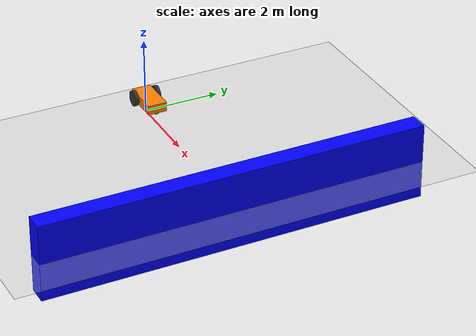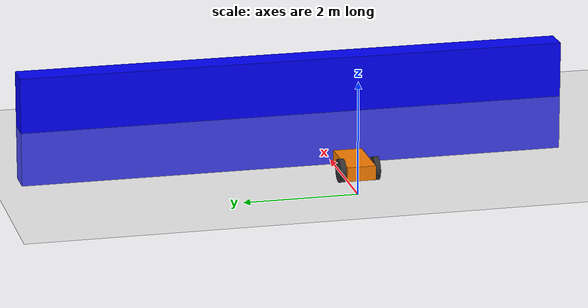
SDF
<?xml version="1.0" ?>
<sdf version="1.8">
    <world name="sensor_world">
        <physics name="1ms" type="ignored">
            <max_step_size>0.001</max_step_size>
            <real_time_factor>1.0</real_time_factor>
        </physics>
        <plugin
            filename="gz-sim-physics-system"
            name="gz::sim::systems::Physics">
        </plugin>
        <plugin
            filename="gz-sim-user-commands-system"
            name="gz::sim::systems::UserCommands">
        </plugin>
        <plugin
            filename="gz-sim-scene-broadcaster-system"
            name="gz::sim::systems::SceneBroadcaster">
        </plugin>
        <plugin
            filename="gz-sim-imu-system"
            name="gz::sim::systems::Imu">
        </plugin>
        <plugin
            filename="gz-sim-sensors-system"
            name="gz::sim::systems::Sensors">
            <render_engine>ogre2</render_engine>
        </plugin>
        <plugin
            filename="gz-sim-contact-system"
            name="gz::sim::systems::Contact">
        </plugin>
        <gui fullscreen="0">

          <!-- 3D scene -->
          <plugin filename="MinimalScene" name="3D View">
            <gz-gui>
              <title>3D View</title>
              <property type="bool" key="showTitleBar">false</property>
              <property type="string" key="state">docked</property>
            </gz-gui>

            <engine>ogre2</engine>
            <scene>scene</scene>
            <ambient_light>0.4 0.4 0.4</ambient_light>
            <background_color>0.8 0.8 0.8</background_color>
            <camera_pose>-6 0 6 0 0.5 0</camera_pose>
            <camera_clip>
              <near>0.25</near>
              <far>25000</far>
            </camera_clip>
          </plugin>

          <!-- Plugins that add functionality to the scene -->
          <plugin filename="EntityContextMenuPlugin" name="Entity context menu">
            <gz-gui>
              <property key="state" type="string">floating</property>
              <property key="width" type="double">5</property>
              <property key="height" type="double">5</property>
              <property key="showTitleBar" type="bool">false</property>
            </gz-gui>
          </plugin>
          <plugin filename="GzSceneManager" name="Scene Manager">
            <gz-gui>
              <property key="resizable" type="bool">false</property>
              <property key="width" type="double">5</property>
              <property key="height" type="double">5</property>
              <property key="state" type="string">floating</property>
              <property key="showTitleBar" type="bool">false</property>
            </gz-gui>
          </plugin>
          <plugin filename="InteractiveViewControl" name="Interactive view control">
            <gz-gui>
              <property key="resizable" type="bool">false</property>
              <property key="width" type="double">5</property>
              <property key="height" type="double">5</property>
              <property key="state" type="string">floating</property>
              <property key="showTitleBar" type="bool">false</property>
            </gz-gui>
          </plugin>
          <plugin filename="CameraTracking" name="Camera Tracking">
            <gz-gui>
              <property key="resizable" type="bool">false</property>
              <property key="width" type="double">5</property>
              <property key="height" type="double">5</property>
              <property key="state" type="string">floating</property>
              <property key="showTitleBar" type="bool">false</property>
            </gz-gui>
          </plugin>
          <plugin filename="MarkerManager" name="Marker manager">
            <gz-gui>
              <property key="resizable" type="bool">false</property>
              <property key="width" type="double">5</property>
              <property key="height" type="double">5</property>
              <property key="state" type="string">floating</property>
              <property key="showTitleBar" type="bool">false</property>
            </gz-gui>
          </plugin>
          <plugin filename="SelectEntities" name="Select Entities">
            <gz-gui>
              <anchors target="Select entities">
                <line own="right" target="right"/>
                <line own="top" target="top"/>
              </anchors>
              <property key="resizable" type="bool">false</property>
              <property key="width" type="double">5</property>
              <property key="height" type="double">5</property>
              <property key="state" type="string">floating</property>
              <property key="showTitleBar" type="bool">false</property>
            </gz-gui>
          </plugin>
          <plugin filename="VisualizationCapabilities" name="Visualization Capabilities">
            <gz-gui>
              <property key="resizable" type="bool">false</property>
              <property key="width" type="double">5</property>
              <property key="height" type="double">5</property>
              <property key="state" type="string">floating</property>
              <property key="showTitleBar" type="bool">false</property>
            </gz-gui>
          </plugin>

          <plugin filename="Spawn" name="Spawn Entities">
            <gz-gui>
              <anchors target="Select entities">
                <line own="right" target="right"/>
                <line own="top" target="top"/>
              </anchors>
              <property key="resizable" type="bool">false</property>
              <property key="width" type="double">5</property>
              <property key="height" type="double">5</property>
              <property key="state" type="string">floating</property>
              <property key="showTitleBar" type="bool">false</property>
            </gz-gui>
          </plugin>

          <!-- World control -->
          <plugin filename="WorldControl" name="World control">
            <gz-gui>
              <title>World control</title>
              <property type="bool" key="showTitleBar">false</property>
              <property type="bool" key="resizable">false</property>
              <property type="double" key="height">72</property>
              <property type="double" key="width">121</property>
              <property type="double" key="z">1</property>

              <property type="string" key="state">floating</property>
              <anchors target="3D View">
                <line own="left" target="left"/>
                <line own="bottom" target="bottom"/>
              </anchors>
            </gz-gui>

            <play_pause>true</play_pause>
            <step>true</step>
            <start_paused>true</start_paused>
            <use_event>true</use_event>

          </plugin>

          <!-- World statistics -->
          <plugin filename="WorldStats" name="World stats">
            <gz-gui>
              <title>World stats</title>
              <property type="bool" key="showTitleBar">false</property>
              <property type="bool" key="resizable">false</property>
              <property type="double" key="height">110</property>
              <property type="double" key="width">290</property>
              <property type="double" key="z">1</property>

              <property type="string" key="state">floating</property>
              <anchors target="3D View">
                <line own="right" target="right"/>
                <line own="bottom" target="bottom"/>
              </anchors>
            </gz-gui>

            <sim_time>true</sim_time>
            <real_time>true</real_time>
            <real_time_factor>true</real_time_factor>
            <iterations>true</iterations>
          </plugin>

          <!-- Insert simple shapes -->
          <plugin filename="Shapes" name="Shapes">
            <gz-gui>
              <property key="resizable" type="bool">false</property>
              <property key="x" type="double">0</property>
              <property key="y" type="double">0</property>
              <property key="width" type="double">250</property>
              <property key="height" type="double">50</property>
              <property key="state" type="string">floating</property>
              <property key="showTitleBar" type="bool">false</property>
              <property key="cardBackground" type="string">#666666</property>
            </gz-gui>
          </plugin>

          <!-- Insert lights -->
          <plugin filename="Lights" name="Lights">
            <gz-gui>
              <property key="resizable" type="bool">false</property>
              <property key="x" type="double">250</property>
              <property key="y" type="double">0</property>
              <property key="width" type="double">150</property>
              <property key="height" type="double">50</property>
              <property key="state" type="string">floating</property>
              <property key="showTitleBar" type="bool">false</property>
              <property key="cardBackground" type="string">#666666</property>
            </gz-gui>
          </plugin>

          <!-- Translate / rotate -->
          <plugin filename="TransformControl" name="Transform control">
            <gz-gui>
              <property key="resizable" type="bool">false</property>
              <property key="x" type="double">0</property>
              <property key="y" type="double">50</property>
              <property key="width" type="double">250</property>
              <property key="height" type="double">50</property>
              <property key="state" type="string">floating</property>
              <property key="showTitleBar" type="bool">false</property>
              <property key="cardBackground" type="string">#777777</property>
            </gz-gui>
          </plugin>

          <!-- Screenshot -->
          <plugin filename="Screenshot" name="Screenshot">
            <gz-gui>
              <property key="resizable" type="bool">false</property>
              <property key="x" type="double">250</property>
              <property key="y" type="double">50</property>
              <property key="width" type="double">50</property>
              <property key="height" type="double">50</property>
              <property key="state" type="string">floating</property>
              <property key="showTitleBar" type="bool">false</property>
              <property key="cardBackground" type="string">#777777</property>
            </gz-gui>
          </plugin>

          <!-- Video recorder -->
          <plugin filename="VideoRecorder" name="VideoRecorder">
            <gz-gui>
              <property key="resizable" type="bool">false</property>
              <property key="x" type="double">300</property>
              <property key="y" type="double">50</property>
              <property key="width" type="double">50</property>
              <property key="height" type="double">50</property>
              <property key="state" type="string">floating</property>
              <property key="showTitleBar" type="bool">false</property>
              <property key="cardBackground" type="string">#777777</property>
            </gz-gui>

            <record_video>
              <use_sim_time>true</use_sim_time>
              <lockstep>false</lockstep>
              <bitrate>4000000</bitrate>
            </record_video>
          </plugin>

          <!-- Inspector -->
          <plugin filename="ComponentInspector" name="Component inspector">
            <gz-gui>
              <property type="string" key="state">docked_collapsed</property>
            </gz-gui>
          </plugin>

          <!-- Entity tree -->
          <plugin filename="EntityTree" name="Entity tree">
            <gz-gui>
              <property type="string" key="state">docked_collapsed</property>
            </gz-gui>
          </plugin>

          <!-- View angle -->
          <plugin filename="ViewAngle" name="View angle">
            <gz-gui>
              <property type="string" key="state">docked_collapsed</property>
            </gz-gui>
          </plugin>

            <!-- KeyPublisher plugin-->
            <plugin filename="KeyPublisher" name="Key Publisher"/>

        </gui>

        <light type="directional" name="sun">
            <cast_shadows>true</cast_shadows>
            <pose>0 0 10 0 0 0</pose>
            <diffuse>0.8 0.8 0.8 1</diffuse>
            <specular>0.2 0.2 0.2 1</specular>
            <attenuation>
                <range>1000</range>
                <constant>0.9</constant>
                <linear>0.01</linear>
                <quadratic>0.001</quadratic>
            </attenuation>
            <direction>-0.5 0.1 -0.9</direction>
        </light>

        <model name="ground_plane">
            <static>true</static>
            <link name="link">
                <collision name="collision">
                <geometry>
                    <plane>
                    <normal>0 0 1</normal>
                    </plane>
                </geometry>
                </collision>
                <visual name="visual">
                <geometry>
                    <plane>
                    <normal>0 0 1</normal>
                    <size>100 100</size>
                    </plane>
                </geometry>
                <material>
                    <ambient>0.8 0.8 0.8 1</ambient>
                    <diffuse>0.8 0.8 0.8 1</diffuse>
                    <specular>0.8 0.8 0.8 1</specular>
                </material>
                </visual>
            </link>
        </model>

        <model name='my_robot' canonical_link='chassis'>
    <pose relative_to='world'>0 0 0.25 0 0 0</pose>

    <link name='chassis'>
        <pose relative_to='__model__'>0.25 0 0.2 0 0 0</pose>
        <inertial>
            <mass>0.2859875</mass>
            <inertia>
                <ixx>0.031541</ixx>
                <ixy>0</ixy>
                <ixz>0</ixz>
                <iyy>0.1041295</iyy>
                <iyz>0</iyz>
                <izz>0.1202535</izz>
            </inertia>
        </inertial>
        <visual name='visual'>
            <geometry>
                <box>
                    <size>1.0 0.5 0.25</size>
                </box>
            </geometry>
            <material>
                <ambient>1.0 0.5 0.0 1</ambient>
    		<diffuse>1.0 0.5 0.0 1</diffuse>
    		<specular>1.0 0.5 0.0 1</specular>
            </material>
        </visual>
        <collision name='collision'>
            <geometry>
                <box>
                    <size>1.0 0.5 0.25</size>
                </box>
            </geometry>
        </collision>
        <sensor name="imu_sensor" type="imu">
            <always_on>1</always_on>
            <update_rate>1</update_rate>
            <visualize>true</visualize>
            <topic>imu</topic>
        </sensor>

    </link>

    <link name='left_wheel'>
        <pose relative_to="chassis">-0.25 0.3 0 -1.5707 0 0</pose>
        <inertial>
            <mass>0.5</mass>
            <inertia>
                <ixx>0.018229</ixx>
                <ixy>0</ixy>
                <ixz>0</ixz>
                <iyy>0.018229</iyy>
                <iyz>0</iyz>
                <izz>0.015625</izz>
            </inertia>
        </inertial>
        <visual name='visual'>
            <geometry>
                <cylinder>
                    <radius>0.2</radius>
                    <length>0.1</length>
                </cylinder>
            </geometry>
            <material>
                 <ambient>0.2 0.2 0.2 1</ambient>
    <diffuse>0.2 0.2 0.2 1</diffuse>
    <specular>0.2 0.2 0.2 1</specular>
            </material>
        </visual>
        <collision name='collision'>
            <geometry>
                <cylinder>
                    <radius>0.2</radius>
                    <length>0.1</length>
                </cylinder>
            </geometry>
        </collision>
    </link>

    <!--copy and paste for right wheel but change position-->
    <link name='right_wheel'>
        <pose relative_to="chassis">-0.25 -0.3 0 -1.5707 0 0</pose>
        <inertial>
            <mass>0.25</mass>
            <inertia>
                <ixx>0.018229</ixx>
                <ixy>0</ixy>
                <ixz>0</ixz>
                <iyy>0.018229</iyy>
                <iyz>0</iyz>
                <izz>0.015625</izz>
            </inertia>
        </inertial>
        <visual name='visual'>
            <geometry>
                <cylinder>
                    <radius>0.2</radius>
                    <length>0.1</length>
                </cylinder>
            </geometry>
            <material>
                 <ambient>0.2 0.2 0.2 1</ambient>
    <diffuse>0.2 0.2 0.2 1</diffuse>
    <specular>0.2 0.2 0.2 1</specular>
            </material>
        </visual>
        <collision name='collision'>
            <geometry>
                <cylinder>
                    <radius>0.2</radius>
                    <length>0.1</length>
                </cylinder>
            </geometry>
        </collision>
    </link>

    <frame name="caster_frame" attached_to='chassis'>
        <pose>0.4 0 -0.1 0 0 0</pose>
    </frame>

    <!--caster wheel-->
    <link name='caster'>
        <pose relative_to='caster_frame'/>
        <inertial>
            <mass>0.25</mass>
            <inertia>
                <ixx>0.025</ixx>
                <ixy>0</ixy>
                <ixz>0</ixz>
                <iyy>0.025</iyy>
                        <iyz>0</iyz>
                        <izz>0.025</izz>
                    </inertia>
                </inertial>
           <visual name='visual'>
    <geometry>
        <sphere>
            <radius>0.1</radius>
        </sphere>
    </geometry>
    <material>
        <ambient>0.0 1 0.0 1</ambient>
        <diffuse>0.0 1 0.0 1</diffuse>
        <specular>0.0 1 0.0 1</specular>
    </material>
</visual>
<collision name='collision'>
    <geometry>
        <sphere>
            <radius>0.1</radius>
        </sphere>
    </geometry>
</collision>
</link>

<!--connecting these links together using joints-->
<joint name='left_wheel_joint' type='revolute'>
    <pose relative_to='left_wheel'/>
    <parent>chassis</parent>
    <child>left_wheel</child>
    <axis>
        <xyz expressed_in='__model__'>0 1 0</xyz>
        <limit>
            <lower>-1.79769e+308</lower>
            <upper>1.79769e+308</upper>
        </limit>
    </axis>
</joint>

<joint name='right_wheel_joint' type='revolute'>
    <pose relative_to='right_wheel'/>
    <parent>chassis</parent>
    <child>right_wheel</child>
    <axis>
        <xyz expressed_in='__model__'>0 1 0</xyz>
        <limit>
            <lower>-1.79769e+308</lower>
            <upper>1.79769e+308</upper>
        </limit>
    </axis>
</joint>

<!--different type of joints ball joint-->
<joint name='caster_wheel' type='ball'>
    <parent>chassis</parent>
    <child>caster</child>
</joint>

            <!--diff drive plugin-->
            <plugin
                filename="gz-sim-diff-drive-system"
                name="gz::sim::systems::DiffDrive">
                <left_joint>left_wheel_joint</left_joint>
                <right_joint>right_wheel_joint</right_joint>
                <wheel_separation>1.2</wheel_separation>
                <wheel_radius>0.4</wheel_radius>
                <odom_publish_frequency>1</odom_publish_frequency>
                <topic>cmd_vel</topic>
            </plugin>
        </model>

        <!--wall-->
        <model name='wall'>
            <static>true</static>
            <pose>5 0 0 0 0 0</pose><!--pose relative to the world-->
            <link name='box'>
                <pose/>
                <inertial> <!--inertial properties of the link mass, inertia matix-->
                    <mass>1.14395</mass>
                    <inertia>
                        <ixx>9.532917</ixx>
                        <ixy>0</ixy>
                        <ixz>0</ixz>
                        <iyy>0.023832</iyy>
                        <iyz>0</iyz>
                        <izz>9.556749</izz>
                    </inertia>
                </inertial>
                <visual name='visual'>
                    <geometry>
                        <box>
                            <size>0.5 10.0 2.0</size>
                        </box>
                    </geometry>
                    <!--let's add color to our link-->
                    <material>
                        <ambient>0.0 0.0 1.0 1</ambient>
                        <diffuse>0.0 0.0 1.0 1</diffuse>
                        <specular>0.0 0.0 1.0 1</specular>
                    </material>
                </visual>
                <collision name='collision'> <!--todo: describe why we need the collision-->
                    <geometry>
                        <box>
                            <size>0.5 10.0 2.0</size>
                        </box>
                    </geometry>
                </collision>
                <sensor name='sensor_contact' type='contact'>
                    <contact>
                        <collision>collision</collision>
                    </contact>
                </sensor>
            </link>
        </model>

        <!-- Moving Left-->
        <plugin filename="gz-sim-triggered-publisher-system"
                name="gz::sim::systems::TriggeredPublisher">
            <input type="gz.msgs.Int32" topic="/keyboard/keypress">
                <match field="data">16777234</match>
            </input>
            <output type="gz.msgs.Twist" topic="/cmd_vel">
                linear: {x: 0.0}, angular: {z: 0.5}
            </output>
        </plugin>
        <!-- Moving Forward-->
        <plugin filename="gz-sim-triggered-publisher-system"
                name="gz::sim::systems::TriggeredPublisher">
            <input type="gz.msgs.Int32" topic="/keyboard/keypress">
                <match field="data">16777235</match>
            </input>
            <output type="gz.msgs.Twist" topic="/cmd_vel">
                linear: {x: 0.5}, angular: {z: 0.0}
            </output>
        </plugin>
        <!-- Moving Right-->
        <plugin filename="gz-sim-triggered-publisher-system"
                name="gz::sim::systems::TriggeredPublisher">
            <input type="gz.msgs.Int32" topic="/keyboard/keypress">
                <match field="data">16777236</match>
            </input>
            <output type="gz.msgs.Twist" topic="/cmd_vel">
                linear: {x: 0.0}, angular: {z: -0.5}
            </output>
        </plugin>
        <!-- Moving Backward-->
        <plugin filename="gz-sim-triggered-publisher-system"
                name="gz::sim::systems::TriggeredPublisher">
            <input type="gz.msgs.Int32" topic="/keyboard/keypress">
                <match field="data">16777237</match>
            </input>
            <output type="gz.msgs.Twist" topic="/cmd_vel">
                linear: {x: -0.5}, angular: {z: 0.0}
            </output>
        </plugin>
        <!-- Stop -->
        <plugin filename="gz-sim-triggered-publisher-system"
                name="gz::sim::systems::TriggeredPublisher">
            <input type="gz.msgs.Int32" topic="/keyboard/keypress">
                <match field="data">16777249</match>
            </input>
            <output type="gz.msgs.Twist" topic="/cmd_vel">
                linear: {x: 0}, angular: {z: 0}
            </output>
        </plugin>

    </world>
</sdf>
